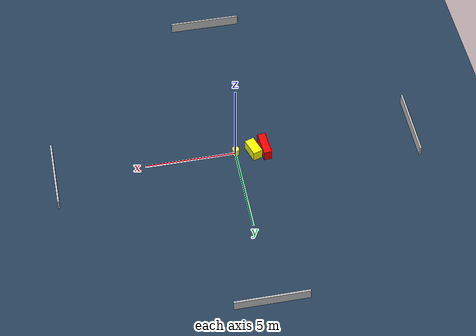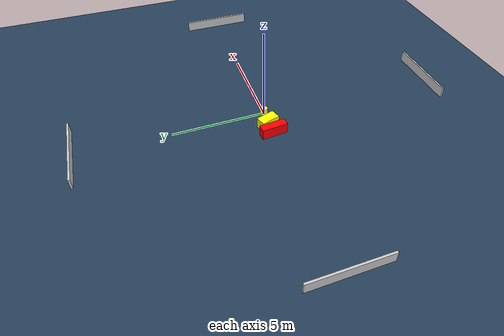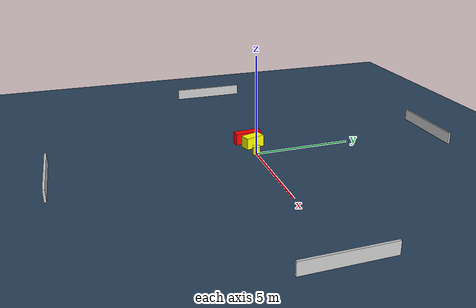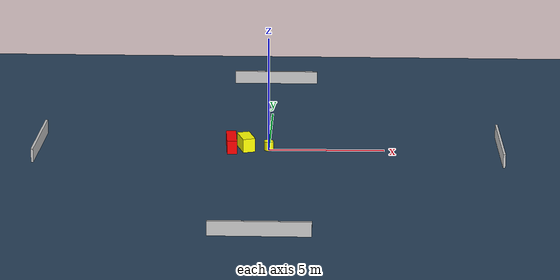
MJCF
<?xml version="1.0" ?>
<mujoco model="generated_environment">
  <option timestep="0.01" integrator="RK4" cone="elliptic"/>
  <default>
    <geom density="1"/>
  </default>
  <asset>
    <texture builtin="gradient" height="3072" name="skybox" rgb1="0.3 0.5 0.7" rgb2="0 0 0" type="skybox" width="512"/>
    <texture builtin="checker" height="300" name="groundplane" rgb1="0.2 0.3 0.4" rgb2="0.1 0.2 0.3" type="2d" width="300"/>
    <material name="groundplane" reflectance="0.2" texrepeat="5 5" texture="groundplane"/>
  </asset>
  <worldbody>
    <light dir="0 0 -1" directional="true" pos="0 0 1.5"/>
    <geom condim="3" friction="0.5 0.005 0.001" material="groundplane" name="floor" pos="0 0 0" size="0 0 0.05" type="plane"/>
    <body name="walls">
      <geom name="wall_1" condim="4" pos="-10.0 0.0 0.3" rgba="0.800000011920929 0.800000011920929 0.800000011920929 1.0" size="0.05 2.0 0.3" type="box"/>
      <geom name="wall_2" condim="4" pos="10.0 0.0 0.3" rgba="0.800000011920929 0.800000011920929 0.800000011920929 1.0" size="0.05 2.0 0.3" type="box"/>
      <geom name="wall_3" condim="4" pos="0.0 -10.0 0.3" rgba="0.800000011920929 0.800000011920929 0.800000011920929 1.0" size="2.0 0.05 0.3" type="box"/>
      <geom name="wall_4" condim="4" pos="0.0 10.0 0.3" rgba="0.800000011920929 0.800000011920929 0.800000011920929 1.0" size="2.0 0.05 0.3" type="box"/>
    </body>
    <body name="robot">
      <joint name="joint_x" type="slide" pos="0 0 0" axis="1 0 0"/>
      <joint name="joint_y" type="slide" pos="0 0 0" axis="0 1 0"/>
      <geom name="robot" type="cylinder" pos="0.0 0.0 0.2" size="0.2 0.2 0.0" mass="5.0" friction="1.0 0.005 0.0001" condim="4" rgba="1.0 1.0 0.0 1.0"/>
    </body>
    <body name="obstacle_1_movable">
      <geom name="obstacle_1_movable" condim="4" pos="-0.9891057390747915 0.12097475647943096 0.3" euler="0 0 197.87299636203437" friction="0.0 0.005 0.001" rgba="1.0 1.0 0.0 1.0" size="0.2735136628729515 0.5103262094574377 0.3" type="box" mass="0.1"/>
      <joint type="free"/>
    </body>
    <body name="obstacle_2_static">
      <geom name="obstacle_2_static" condim="4" pos="-1.6189534436836157 0.04460507439134445 0.3" euler="0 0 94.84130723674478" friction="0.0 0.005 0.001" rgba="1.0 0.0 0.0 1.0" size="0.6926217737022065 0.21793807485443273 0.3" type="box"/>
    </body>
  </worldbody>
  <actuator>
    <motor name="actuator_x" joint="joint_x" gear="1" ctrlrange="-1 1"/>
    <motor name="actuator_y" joint="joint_y" gear="1" ctrlrange="-1 1"/>
  </actuator>
</mujoco>
